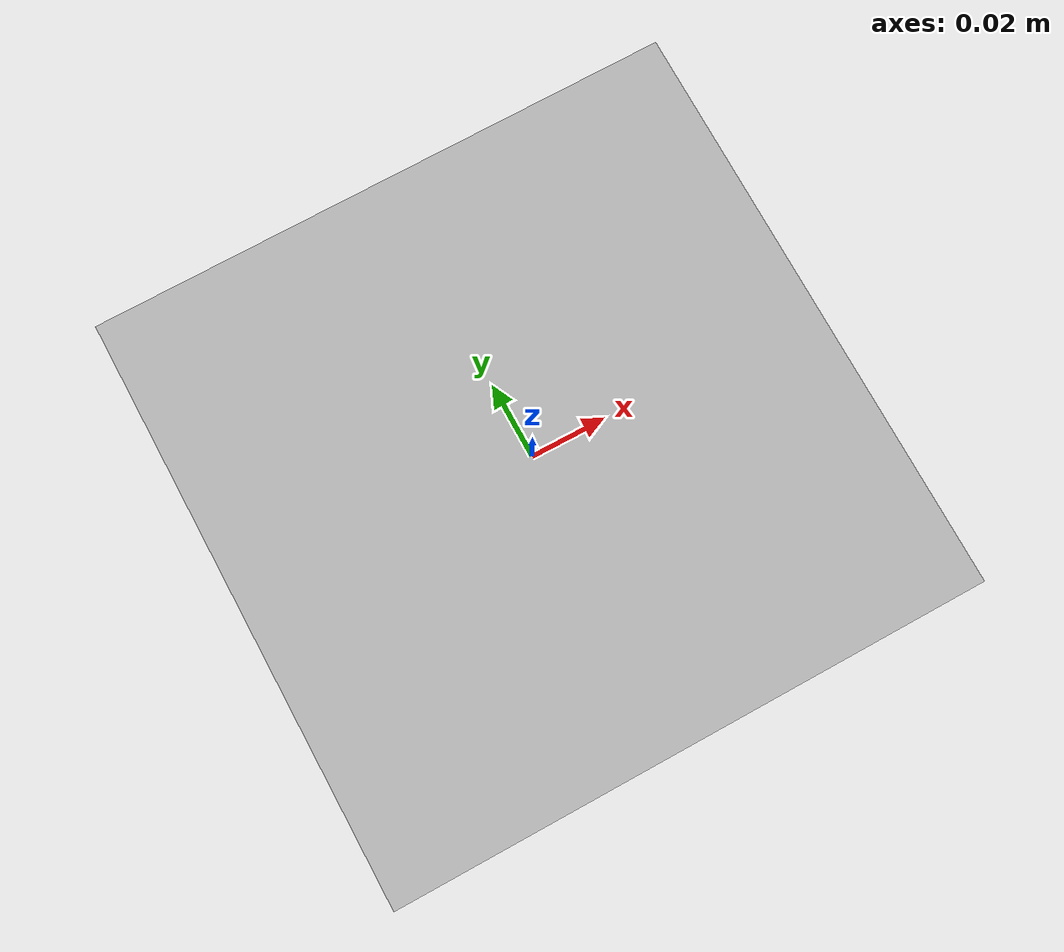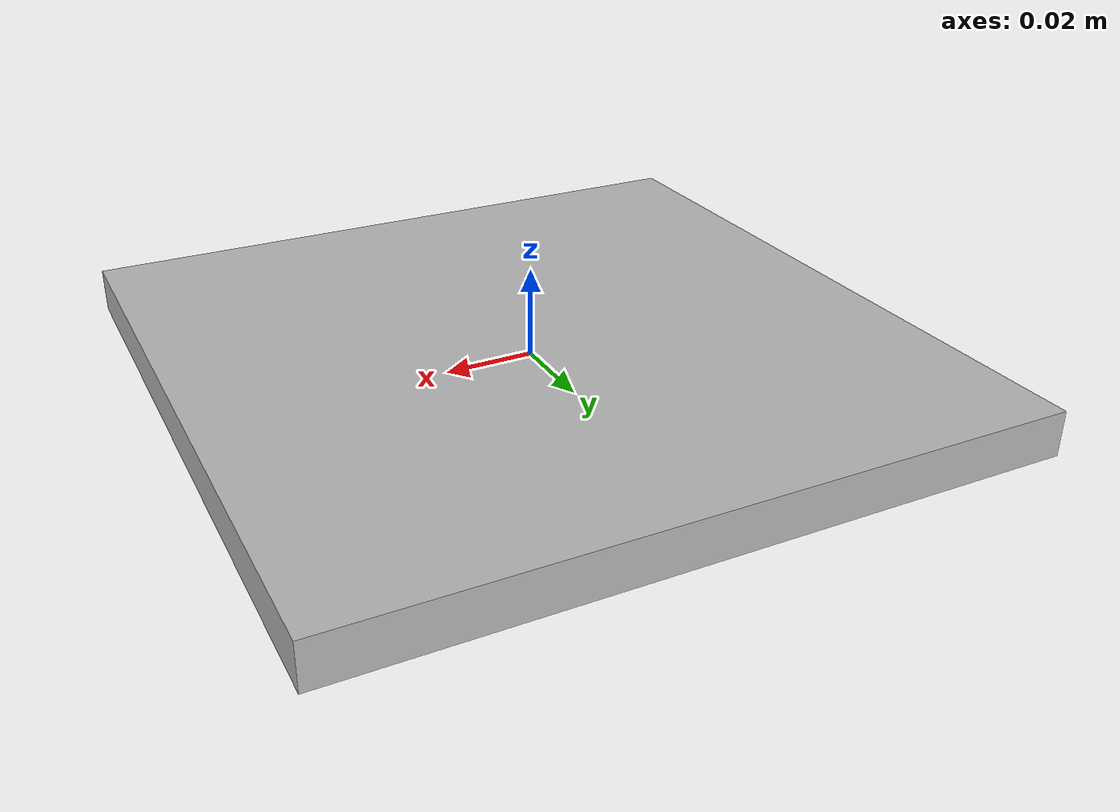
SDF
<?xml version="1.0" ?>
<sdf version="1.6">
  <model name="stop">
    <static>true</static>
    <link name="stop_link">
      <collision name="stop_collision">
        <geometry>
            <box>
              <size>0.155 0.155 0.01</size>
            </box>
        </geometry>
      </collision>
      <visual name="stop_visual">
        <cast_shadows>false</cast_shadows>
        <geometry>
            <box>
              <size>0.155 0.155 0.01</size>
            </box>
        </geometry>
	      <material>
          <script>
            <uri>model://turtlebot3_selfdriving/stop/materials/scripts</uri>
            <uri>model://turtlebot3_selfdriving/stop/materials/textures</uri>
            <name>stop</name>
          </script>
        </material>
      </visual>
    </link>
  </model>
</sdf>
